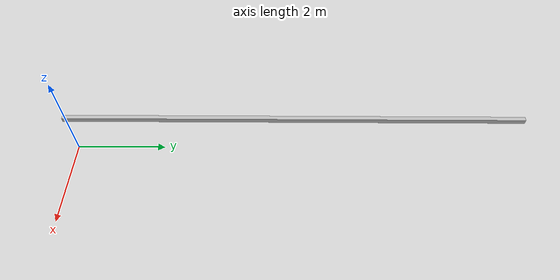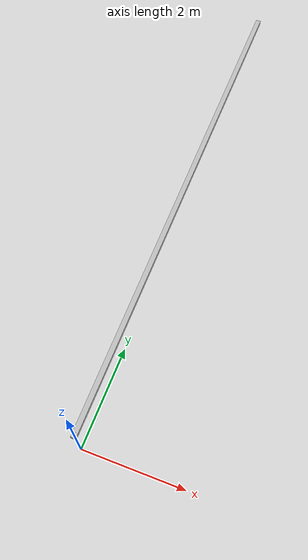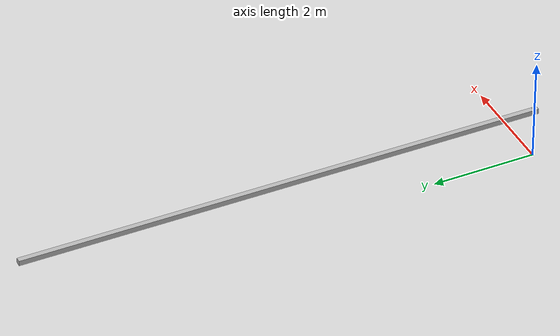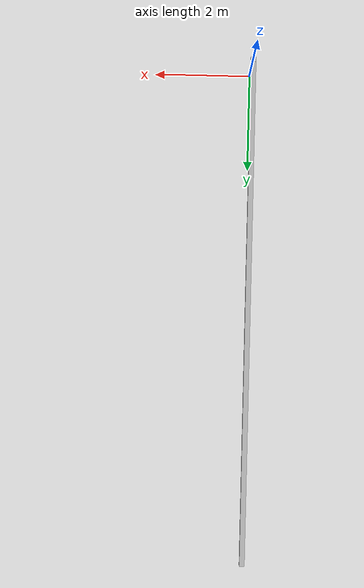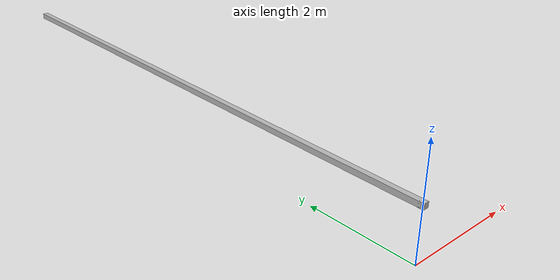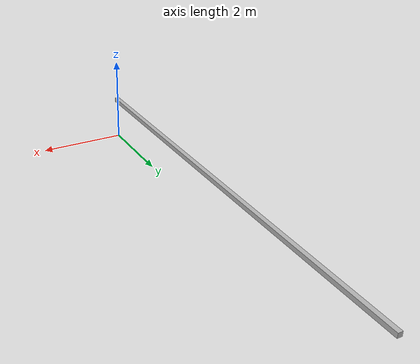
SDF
<?xml version="1.0" ?>
<sdf version="1.5">
  <world name="default">
    <model name ='model'>
      <pose>0 0 1 0 0 0</pose>

      <link name='baselink'>
        <inertial>
          <mass>1.0</mass>
          <inertia>
            <ixx>0.0016667</ixx>
            <ixy>0</ixy>
            <ixz>0</ixz>
            <iyy>0.0016667</iyy>
            <iyz>0</iyz>
            <izz>0.0016667</izz>
          </inertia>
        </inertial>
        <collision name='collision'>
          <geometry>
            <box><size>0.1 .1 0.1</size></box>
          </geometry>
        </collision>"
        <visual name='visual'>
          <geometry>
            <box><size>0.1 0.1 0.1</size></box>
          </geometry>"
        </visual>
      </link>

      <link name='link'>
        <inertial>
          <mass>1.0</mass>
          <inertia>
            <ixx>8.33416667</ixx>
            <ixy>0</ixy>
            <ixz>0</ixz>
            <iyy>0.00166667</iyy>
            <iyz>0</iyz>
            <izz>8.33416667</izz>
          </inertia>
        </inertial>
        <pose>0 5 0 0 0 0</pose>
        <collision name='contact_collision'>
          <geometry>
            <box><size>0.1 10 0.1</size></box>
          </geometry>
        </collision>"
        <visual name='visual'>
          <geometry>
            <box><size>0.1 10 0.1</size></box>
          </geometry>"
        </visual>
        <sensor name='altimeter' type='altimeter'>
          <pose>0 5 0 0 0 0</pose>
          <always_on>true</always_on>
          <altimeter>
          </altimeter>
        </sensor>
      </link>

      <joint name="joint" type="revolute">
        <pose>0 -5 0 0 0 0</pose>
        <parent>baselink</parent>
        <child>link</child>
        <axis>
          <xyz>1 0 0</xyz>
        </axis>
      </joint>

      <joint name="joint_drop" type="prismatic">
        <pose>0 -5 0 0 0 0</pose>
        <parent>world</parent>
        <child>baselink</child>
        <axis>
          <xyz>0 0 1</xyz>
          <dynamics>
            <damping>100</damping>
          </dynamics>
        </axis>
      </joint>

    </model>
  </world>
</sdf>
